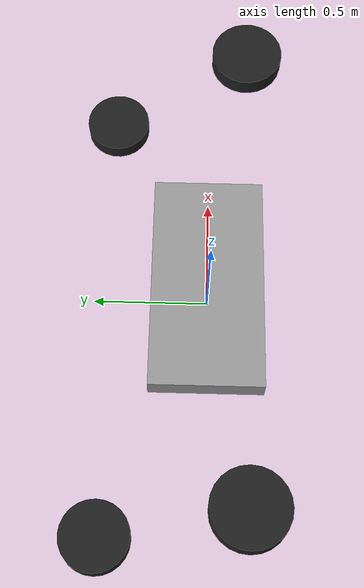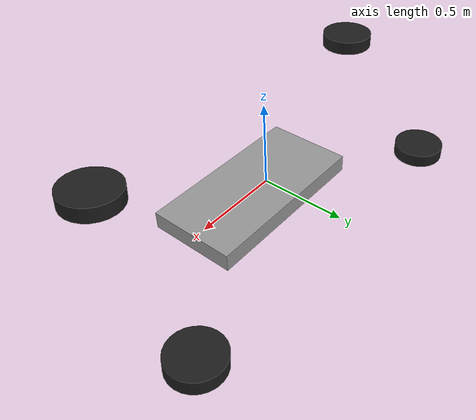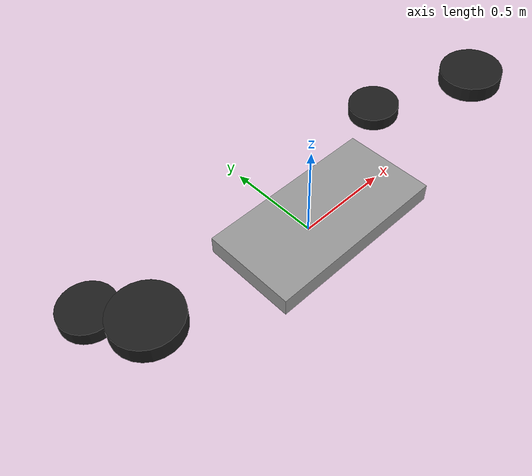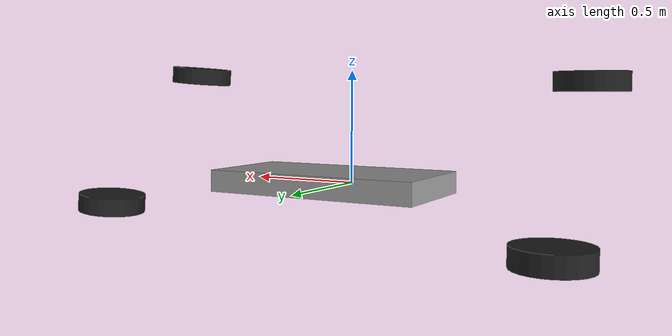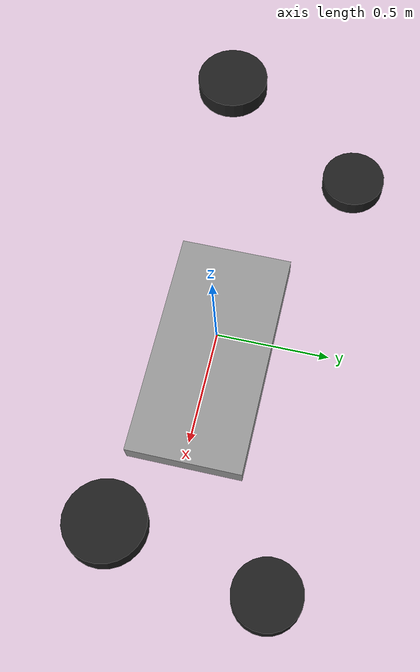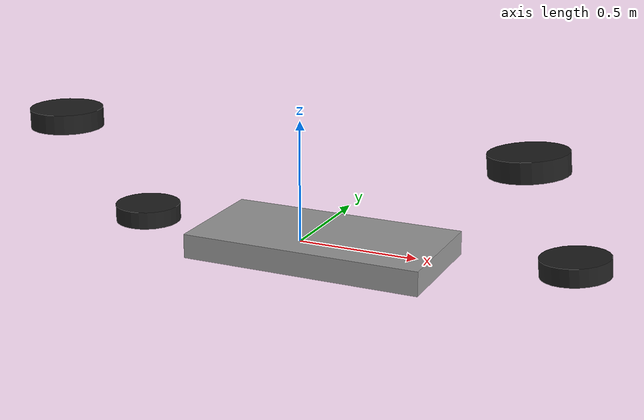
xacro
<?xml version='1.0'?>

<robot name="cart_front_steer" xmlns:xacro="http://www.ros.org/wiki/xacro">

  # Vehicle with rigid suspension and front steering
  # Consists of box chassis with 2 steerable and 2 non-steerable wheels
  # SI units (length in meters)

  <xacro:include filename="$(find robot)/urdf/robot.gazebo" />

  # Geometry
  <xacro:property name="PI" value="3.1415926535897931"/>
  <xacro:property name="chassis_dx" value="1.0" />
  <xacro:property name="chassis_dy" value="0.5" />
  <xacro:property name="chassis_dz" value="0.1" />
  <xacro:property name="wheel_radius" value="0.15" />
  <xacro:property name="wheel_width" value="0.08" />
  <xacro:property name="chassis_z0" value="${wheel_radius}" />
  <xacro:property name="wheel_x0" value="${chassis_dx*0.5}" />
  <xacro:property name="wheel_y0" value="${chassis_dy*0.5 + wheel_width*0.6}" />
  <xacro:property name="steer_limit"  value="${35 * PI / 180.0}" />
  <xacro:property name="caster_angle" value="${5 * PI / 180.0}" />

  # inertia
  <xacro:property name="chassis_mass" value="10.0" />
  <xacro:property name="chassis_ixx" value="${chassis_mass/12.0 * (chassis_dy**2 + chassis_dz**2)}" />
  <xacro:property name="chassis_iyy" value="${chassis_mass/12.0 * (chassis_dz**2 + chassis_dx**2)}" />
  <xacro:property name="chassis_izz" value="${chassis_mass/12.0 * (chassis_dx**2 + chassis_dy**2)}" />

  # chassis c.g. offset from center of box
  <xacro:property name="chassis_cgx" value="${chassis_dx*0.1}" />
  <xacro:property name="chassis_cgy" value="0" />
  <xacro:property name="chassis_cgz" value="0" />
  <xacro:property name="wheel_mass" value="0.5" />
  <xacro:property name="wheel_ixx" value="${wheel_mass * (wheel_radius**2 / 4.0 + wheel_width**2 / 12.0)}" />
  <xacro:property name="wheel_iyy" value="${wheel_mass * (wheel_radius**2 / 4.0 + wheel_width**2 / 12.0)}" />
  <xacro:property name="wheel_izz" value="${wheel_mass/2.0 * wheel_radius**2}" />

  <link name="world"></link>

  <joint name="robot_chassis_joint" type="fixed">
    <origin xyz="0 0 0" rpy="0 0 0" />
    <parent link="world"/>
    <child link="chassis" />
  </joint>

  <link name='chassis'>
    <inertial>
      <mass value="${chassis_mass}"/>
      <origin xyz="${chassis_cgx} ${chassis_cgy} ${chassis_cgz}" rpy=" 0 0 0"/>
      <inertia
          ixx="${chassis_ixx}" ixy="0" ixz="0"
          iyy="${chassis_iyy}" iyz="0"
          izz="${chassis_izz}"/>
    </inertial>
    <collision name='chassis_collision'>
      <origin xyz="${chassis_cgx} ${chassis_cgy} ${chassis_cgz}" rpy=" 0 0 0"/>
      <geometry>
        <box size="${chassis_dx} ${chassis_dy} ${chassis_dz}"/>
      </geometry>
    </collision>
    <visual name='chassis_visual'>
      <origin xyz="${chassis_cgx} ${chassis_cgy} ${chassis_cgz}" rpy=" 0 0 0"/>
      <geometry>
        <box size="${chassis_dx} ${chassis_dy} ${chassis_dz}"/>
      </geometry>
    </visual>
  </link>

  <link name="front_left_wheel">
    <collision name='front_left_wheel_collision'>
      <origin xyz="${wheel_x0} ${wheel_y0} ${wheel_radius}" rpy="${-PI / 2} ${-caster_angle} 0"/>
      <geometry>
        <cylinder radius="${wheel_radius}" length="${wheel_width}"/>
      </geometry>
      <surface>
        <friction>
          <ode>
            <mu>0</mu>
            <mu2>0</mu2>
            <slip1>1.0</slip1>
            <slip2>1.0</slip2>
          </ode>
        </friction>
      </surface>
    </collision>
    <visual name='front_left_wheel_visual'>
      <origin xyz="${wheel_x0} ${wheel_y0} ${wheel_radius}" rpy="${-PI / 2} ${-caster_angle} 0"/>
      <geometry>
        <cylinder radius="${wheel_radius}" length="${wheel_width}"/>
      </geometry>
    </visual>
    <inertial>
      <mass value="${wheel_mass}"/>
      <origin xyz="${wheel_x0} ${wheel_y0} ${wheel_radius}" rpy="${-PI / 2} ${-caster_angle} 0"/>
      <inertia
          ixx="${wheel_ixx}" ixy="0" ixz="0"
          iyy="${wheel_iyy}" iyz="0"
          izz="${wheel_izz}"/>
    </inertial>
  </link>

  <link name="front_right_wheel">
    <collision name='front_right_wheel_collision'>
      <origin xyz="${wheel_x0} ${-wheel_y0} ${wheel_radius}" rpy="${-PI / 2} ${-caster_angle} 0"/>
      <geometry>
        <cylinder radius="${wheel_radius}" length="${wheel_width}"/>
      </geometry>
      <surface>
        <friction>
          <ode>
            <mu>0</mu>
            <mu2>0</mu2>
            <slip1>1.0</slip1>
            <slip2>1.0</slip2>
          </ode>
        </friction>
      </surface>
    </collision>
    <visual name='front_right_wheel_visual'>
      <origin xyz="${wheel_x0} ${-wheel_y0} ${wheel_radius}" rpy="${-PI / 2} ${-caster_angle} 0"/>
      <geometry>
        <cylinder radius="${wheel_radius}" length="${wheel_width}"/>
      </geometry>
    </visual>
    <inertial>
      <mass value="${wheel_mass}"/>
      <origin xyz="${wheel_x0} ${-wheel_y0} ${wheel_radius}" rpy="${-PI / 2} ${-caster_angle} 0"/>
      <inertia
          ixx="${wheel_ixx}" ixy="0" ixz="0"
          iyy="${wheel_iyy}" iyz="0"
          izz="${wheel_izz}"/>
    </inertial>
  </link>

  <link name="rear_left_wheel">
    <collision name='rear_left_wheel_collision'>
      <origin xyz="${-wheel_x0} ${wheel_y0} ${wheel_radius}" rpy="${-PI / 2} 0 0"/>
      <geometry>
        <cylinder radius="${wheel_radius}" length="${wheel_width}"/>
      </geometry>
      <surface>
        <friction>
          <ode>
            <mu>0</mu>
            <mu2>0</mu2>
            <slip1>1.0</slip1>
            <slip2>1.0</slip2>
          </ode>
        </friction>
      </surface>
    </collision>
    <visual name='rear_left_wheel_visual'>
      <origin xyz="${-wheel_x0} ${wheel_y0} ${wheel_radius}" rpy="${-PI / 2} 0 0"/>
      <geometry>
        <cylinder radius="${wheel_radius}" length="${wheel_width}"/>
      </geometry>
    </visual>
    <inertial>
      <mass value="${wheel_mass}"/>
      <origin xyz="${-wheel_x0} ${wheel_y0} ${wheel_radius}" rpy="${-PI / 2} 0 0"/>
      <inertia
          ixx="${wheel_ixx}" ixy="0" ixz="0"
          iyy="${wheel_iyy}" iyz="0"
          izz="${wheel_izz}"/>
    </inertial>
  </link>

  <link name="rear_right_wheel">
    <collision name='rear_right_wheel_collision'>
      <origin xyz="${-wheel_x0} ${-wheel_y0} ${wheel_radius}" rpy="${-PI / 2} 0 0"/>
      <geometry>
        <cylinder radius="${wheel_radius}" length="${wheel_width}"/>
      </geometry>
      <surface>
        <friction>
          <ode>
            <mu>0</mu>
            <mu2>0</mu2>
            <slip1>1.0</slip1>
            <slip2>1.0</slip2>
          </ode>
        </friction>
      </surface>
    </collision>
    <visual name='rear_right_wheel_visual'>
      <origin xyz="${-wheel_x0} ${-wheel_y0} ${wheel_radius}" rpy="${-PI / 2} 0 0"/>
      <geometry>
        <cylinder radius="${wheel_radius}" length="${wheel_width}"/>
      </geometry>
    </visual>
    <inertial>
      <mass value="${wheel_mass}"/>
      <origin xyz="${-wheel_x0} ${-wheel_y0} ${wheel_radius}" rpy="${-PI / 2} 0 0"/>
      <inertia
          ixx="${wheel_ixx}" ixy="0" ixz="0"
          iyy="${wheel_iyy}" iyz="0"
          izz="${wheel_izz}"/>
    </inertial>
  </link>

  <joint type="continuous" name="front_left_wheel_spinner">
    <origin xyz="${wheel_x0} ${wheel_y0} ${wheel_radius}" rpy="${-PI / 2} ${-caster_angle} 0"/>
    <child link="front_left_wheel"/>
    <parent link="chassis"/>
    <axis xyz="0 0 1" rpy="0 0 0"/>
    <!--dynamics damping="0.0" friction="0.0"/-->
  </joint>

  <joint type="continuous" name="front_right_wheel_spinner">
    <origin xyz="${wheel_x0} ${-wheel_y0} ${wheel_radius}" rpy="${-PI / 2} ${-caster_angle} 0"/>
    <child link="front_right_wheel"/>
    <parent link="chassis"/>
    <axis xyz="0 0 1" rpy="0 0 0"/>
    <!--dynamics damping="0.0" friction="0.0"/-->
  </joint>

  <joint type="continuous" name="rear_left_wheel_spinner">
    <origin xyz="${-wheel_x0} ${wheel_y0} ${wheel_radius}" rpy="${-PI / 2} 0 0"/>
    <child link="rear_left_wheel"/>
    <parent link="chassis"/>
    <axis xyz="0 0 1" rpy="0 0 0"/>
  </joint>

  <joint type="continuous" name="rear_right_wheel_spinner">
    <origin xyz="${-wheel_x0} ${-wheel_y0} ${wheel_radius}" rpy="${-PI / 2} 0 0"/>
    <child link="rear_right_wheel"/>
    <parent link="chassis"/>
    <axis xyz="0 0 1" rpy="0 0 0"/>
  </joint>

  <transmission name="tran1">
    <type>transmission_interface/SimpleTransmission</type>
    <joint name="rear_left_wheel_spinner">
      <hardwareInterface>hardware_interface/EffortJointInterface</hardwareInterface>
    </joint>
    <actuator name="motor1">
      <hardwareInterface>hardware_interface/EffortJointInterface</hardwareInterface>
      <mechanicalReduction>1</mechanicalReduction>
    </actuator>
  </transmission>

  <transmission name="tran2">
    <type>transmission_interface/SimpleTransmission</type>
    <joint name="rear_right_wheel_spinner">
      <hardwareInterface>hardware_interface/EffortJointInterface</hardwareInterface>
    </joint>
    <actuator name="motor2">
      <hardwareInterface>hardware_interface/EffortJointInterface</hardwareInterface>
      <mechanicalReduction>1</mechanicalReduction>
    </actuator>
  </transmission>

  <gazebo reference="front_left_wheel">
      <material>Gazebo/Black</material>
  </gazebo>
  <gazebo reference="front_right_wheel">
      <material>Gazebo/Black</material>
  </gazebo>
  <gazebo reference="rear_left_wheel">
      <material>Gazebo/Black</material>
  </gazebo>
  <gazebo reference="rear_right_wheel">
      <material>Gazebo/Black</material>
  </gazebo>
  <gazebo reference="chassis">
      <material>Gazebo/Grey</material>
  </gazebo>

</robot>
